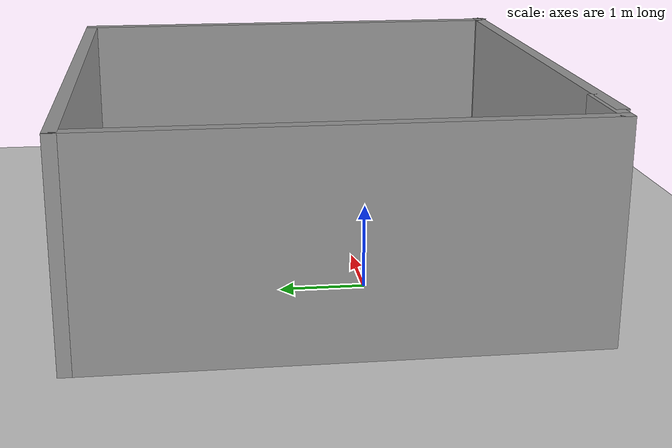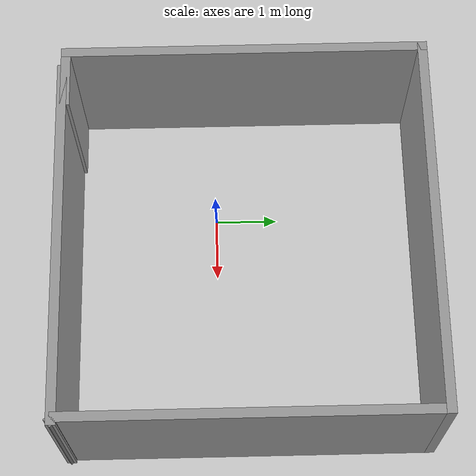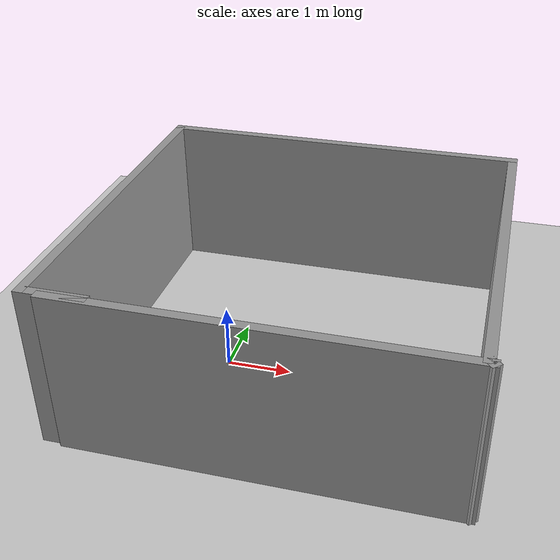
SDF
<sdf version="1.7">
 <world name="default">
  <light name="sun" type="directional">
   <pose>0 0 10 0 -0 0</pose>
   <diffuse>0.8 0.8 0.8 1</diffuse>
   <specular>0.2 0.2 0.2 1</specular>
   <attenuation>
    <range>1000</range>
    <constant>0.9</constant>
    <linear>0.01</linear>
    <quadratic>0.001</quadratic>
   </attenuation>
   <direction>-0.5 0.1 -0.9</direction>
   <spot><inner_angle>0</inner_angle><outer_angle>0</outer_angle><falloff>0</falloff></spot>
  </light>
  <model name="ground_plane">
   <static>1</static>
   <link name="link">
    <collision name="collision">
     <geometry><plane><normal>0 0 1</normal><size>100 100</size></plane></geometry>
     <surface>
      <contact><collide_bitmask>65535</collide_bitmask></contact>
      <friction><ode><mu>100</mu><mu2>50</mu2></ode></friction>
     </surface>
    </collision>
    <visual name="visual">
     <cast_shadows>0</cast_shadows>
     <geometry><plane><normal>0 0 1</normal><size>100 100</size></plane></geometry>
     <material>
      <script><uri>file://media/materials/scripts/gazebo.material</uri><name>Gazebo/Grey</name></script>
     </material>
    </visual>
   </link>
  </model>
  <gravity>0 0 -9.8</gravity>
  <magnetic_field>6e-06 2.3e-05 -4.2e-05</magnetic_field>
  <atmosphere type="adiabatic"/>
  <physics type="ode">
   <max_step_size>0.001</max_step_size>
   <real_time_factor>1</real_time_factor>
   <real_time_update_rate>1000</real_time_update_rate>
  </physics>
  <scene><ambient>0.4 0.4 0.4 1</ambient><background>0.7 0.7 0.7 1</background><shadows>1</shadows></scene>
  <spherical_coordinates>
   <surface_model>EARTH_WGS84</surface_model>
   <latitude_deg>0</latitude_deg>
   <longitude_deg>0</longitude_deg>
   <elevation>0</elevation>
   <heading_deg>0</heading_deg>
  </spherical_coordinates>
  <model name="Untitled">
   <pose>1.05815 0.469815 0 0 -0 0</pose>
   <link name="Wall_0">
    <collision name="Wall_0_Collision">
     <geometry><box><size>5.75 0.15 2.5</size></box></geometry>
     <pose>0 0 1.25 0 -0 0</pose>
    </collision>
    <visual name="Wall_0_Visual">
     <pose>0 0 1.25 0 -0 0</pose>
     <geometry><box><size>5.75 0.15 2.5</size></box></geometry>
     <material>
      <script><uri>file://media/materials/scripts/gazebo.material</uri><name>Gazebo/Grey</name></script>
      <ambient>1 1 1 1</ambient>
     </material>
     <meta><layer>0</layer></meta>
    </visual>
    <pose>0.131847 -2.80981 0 0 -0 0</pose>
   </link>
   <link name="Wall_2">
    <collision name="Wall_2_Collision">
     <geometry><box><size>0.217335 0.15 2.5</size></box></geometry>
     <pose>0 0 1.25 0 -0 0</pose>
    </collision>
    <visual name="Wall_2_Visual">
     <pose>0 0 1.25 0 -0 0</pose>
     <geometry><box><size>0.217335 0.15 2.5</size></box></geometry>
     <material>
      <script><uri>file://media/materials/scripts/gazebo.material</uri><name>Gazebo/Grey</name></script>
      <ambient>1 1 1 1</ambient>
     </material>
     <meta><layer>0</layer></meta>
    </visual>
    <pose>2.90957 -2.78457 0 0 -0 2.29382</pose>
   </link>
   <link name="Wall_3">
    <collision name="Wall_3_Collision">
     <geometry><box><size>5.75 0.15 2.5</size></box></geometry>
     <pose>0 0 1.25 0 -0 0</pose>
    </collision>
    <visual name="Wall_3_Visual">
     <pose>0 0 1.25 0 -0 0</pose>
     <geometry><box><size>5.75 0.15 2.5</size></box></geometry>
     <material>
      <script><uri>file://media/materials/scripts/gazebo.material</uri><name>Gazebo/Grey</name></script>
      <ambient>1 1 1 1</ambient>
     </material>
     <meta><layer>0</layer></meta>
    </visual>
    <pose>2.88729 0.040674 0 0 -0 1.5708</pose>
   </link>
   <link name="Wall_4">
    <collision name="Wall_4_Collision">
     <geometry><box><size>6 0.15 2.5</size></box></geometry>
     <pose>0 0 1.25 0 -0 0</pose>
    </collision>
    <visual name="Wall_4_Visual">
     <pose>0 0 1.25 0 -0 0</pose>
     <geometry><box><size>6 0.15 2.5</size></box></geometry>
     <material>
      <script><uri>file://media/materials/scripts/gazebo.material</uri><name>Gazebo/Grey</name></script>
      <ambient>1 1 1 1</ambient>
     </material>
     <meta><layer>0</layer></meta>
    </visual>
    <pose>-0.037706 2.84067 0 0 -0 3.14159</pose>
   </link>
   <link name="Wall_5">
    <collision name="Wall_5_Collision">
     <geometry><box><size>5.75 0.15 2.5</size></box></geometry>
     <pose>0 0 1.25 0 -0 0</pose>
    </collision>
    <visual name="Wall_5_Visual">
     <pose>0 0 1.25 0 -0 0</pose>
     <geometry><box><size>5.75 0.15 2.5</size></box></geometry>
     <material>
      <script><uri>file://media/materials/scripts/gazebo.material</uri><name>Gazebo/Grey</name></script>
      <ambient>1 1 1 1</ambient>
     </material>
     <meta><layer>0</layer></meta>
    </visual>
    <pose>-2.96271 0.040674 0 0 -0 -1.5708</pose>
   </link>
   <link name="Wall_6">
    <collision name="Wall_6_Collision">
     <geometry><box><size>1 0.15 2.5</size></box></geometry>
     <pose>0 0 1.25 0 -0 0</pose>
    </collision>
    <visual name="Wall_6_Visual">
     <pose>0 0 1.25 0 -0 0</pose>
     <geometry><box><size>1 0.15 2.5</size></box></geometry>
     <material>
      <script><uri>file://media/materials/scripts/gazebo.material</uri><name>Gazebo/Grey</name></script>
      <ambient>1 1 1 1</ambient>
     </material>
     <meta><layer>0</layer></meta>
    </visual>
    <pose>-2.53771 -2.75933 0 0 -0 0</pose>
   </link>
   <static>1</static>
  </model>
 </world>
</sdf>
